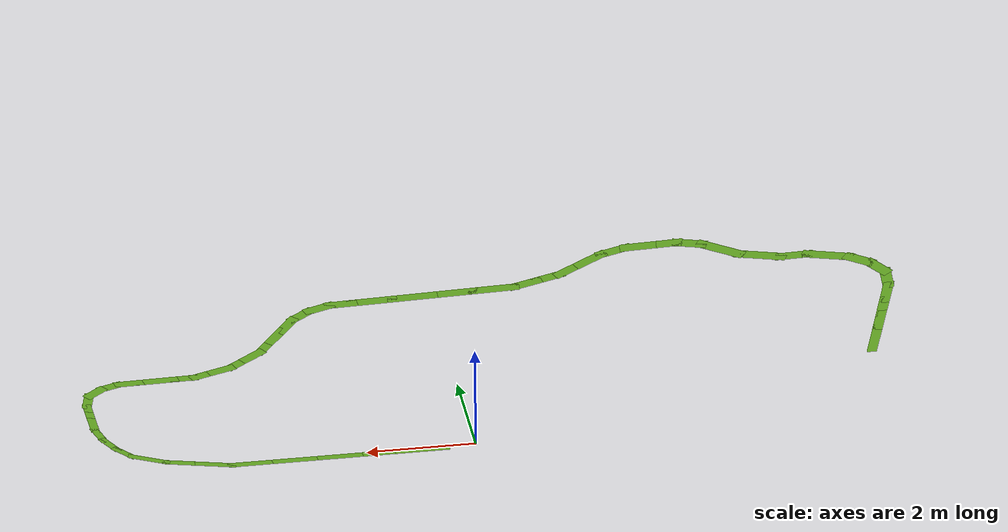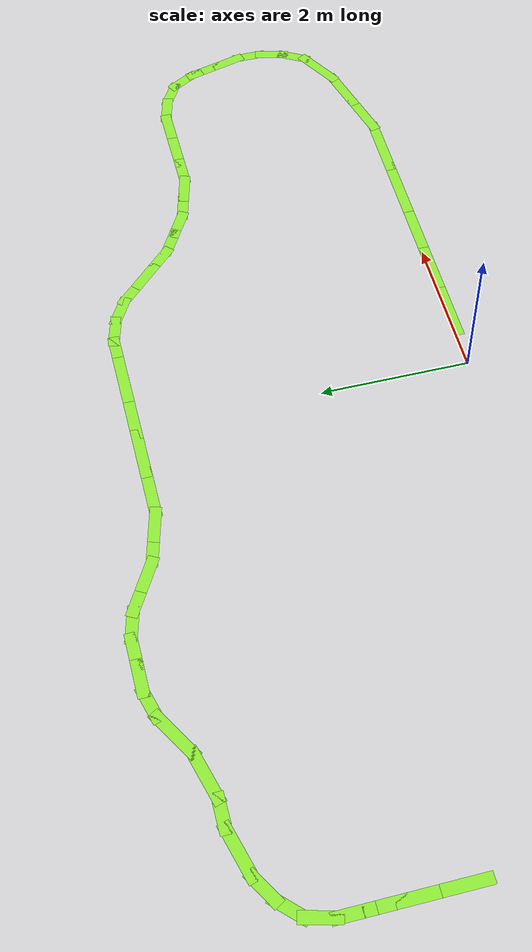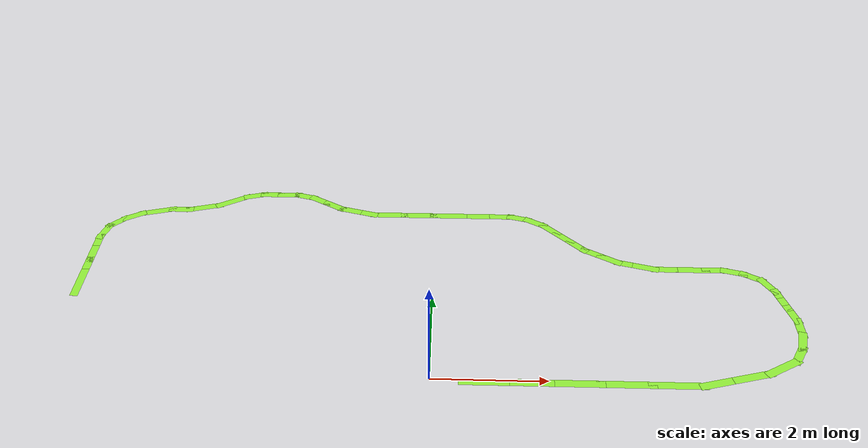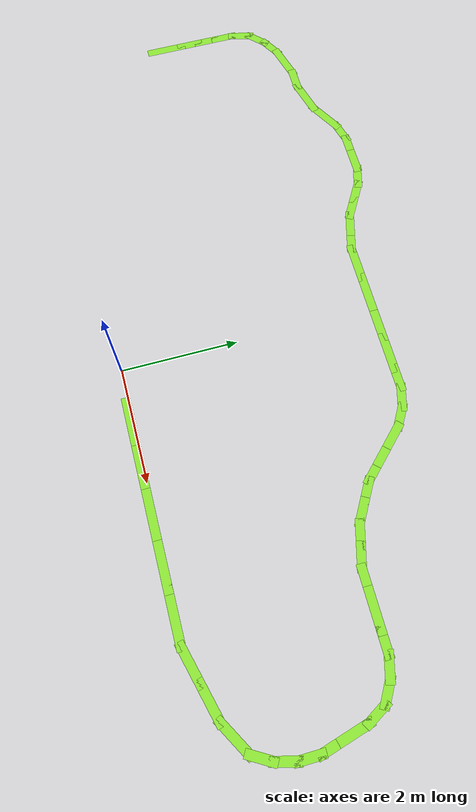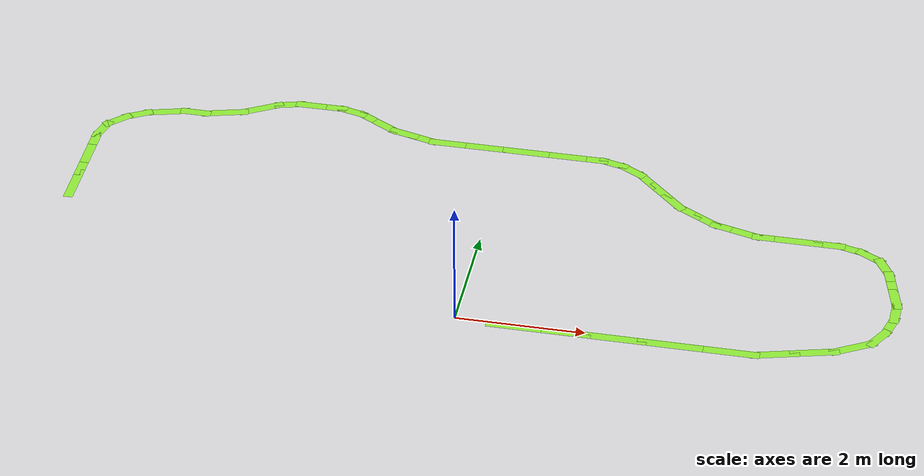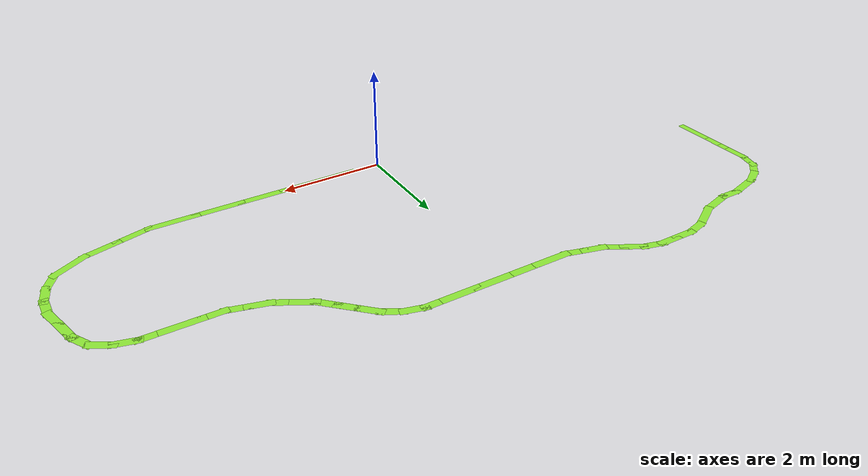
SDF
<?xml version='1.0'?>
<sdf version='1.6'>
  <model name='path_museum'>
    <pose frame=''>-0.03127 2.51163 0 0 -0 0</pose>
    <link name='Wall_19'>
      <collision name='Wall_19_Collision'>
        <geometry>
          <box>
            <size>1 0.15 0.0</size>
          </box>
        </geometry>
        <pose frame=''>0 0 0 0 -0 0</pose>
      </collision>
      <visual name='Wall_19_Visual'>
        <pose frame=''>0 0 0 0 -0 0</pose>
        <geometry>
          <box>
            <size>1 0.15 0.0</size>
          </box>
        </geometry>
        <material>
          <script>
            <uri>file://media/materials/scripts/gazebo.material</uri>
            <name>Gazebo/Grey</name>
          </script>
          <ambient>0.541176 0.886275 0.203922 1</ambient>
        </material>
        <meta>
          <layer>0</layer>
        </meta>
      </visual>
      <pose frame=''>1.01452 -2.55209 0 0 -0 0</pose>
    </link>
    <link name='Wall_21'>
      <collision name='Wall_21_Collision'>
        <geometry>
          <box>
            <size>0.75 0.15 0.0</size>
          </box>
        </geometry>
        <pose frame=''>0 0 0 0 -0 0</pose>
      </collision>
      <visual name='Wall_21_Visual'>
        <pose frame=''>0 0 0 0 -0 0</pose>
        <geometry>
          <box>
            <size>0.75 0.15 0.0</size>
          </box>
        </geometry>
        <material>
          <script>
            <uri>file://media/materials/scripts/gazebo.material</uri>
            <name>Gazebo/Grey</name>
          </script>
          <ambient>0.541176 0.886275 0.203922 1</ambient>
        </material>
        <meta>
          <layer>0</layer>
        </meta>
      </visual>
      <pose frame=''>1.73952 -2.55209 0 0 -0 0</pose>
    </link>
    <link name='Wall_22'>
      <collision name='Wall_22_Collision'>
        <geometry>
          <box>
            <size>1 0.15 0.0</size>
          </box>
        </geometry>
        <pose frame=''>0 0 0 0 -0 0</pose>
      </collision>
      <visual name='Wall_22_Visual'>
        <pose frame=''>0 0 0 0 -0 0</pose>
        <geometry>
          <box>
            <size>1 0.15 0.0</size>
          </box>
        </geometry>
        <material>
          <script>
            <uri>file://media/materials/scripts/gazebo.material</uri>
            <name>Gazebo/Grey</name>
          </script>
          <ambient>0.541176 0.886275 0.203922 1</ambient>
        </material>
        <meta>
          <layer>0</layer>
        </meta>
      </visual>
      <pose frame=''>2.46452 -2.55209 0 0 -0 0</pose>
    </link>
    <link name='Wall_23'>
      <collision name='Wall_23_Collision'>
        <geometry>
          <box>
            <size>1 0.15 0.0</size>
          </box>
        </geometry>
        <pose frame=''>0 0 0 0 -0 0</pose>
      </collision>
      <visual name='Wall_23_Visual'>
        <pose frame=''>0 0 0 0 -0 0</pose>
        <geometry>
          <box>
            <size>1 0.15 0.0</size>
          </box>
        </geometry>
        <material>
          <script>
            <uri>file://media/materials/scripts/gazebo.material</uri>
            <name>Gazebo/Grey</name>
          </script>
          <ambient>0.541176 0.886275 0.203922 1</ambient>
        </material>
        <meta>
          <layer>0</layer>
        </meta>
      </visual>
      <pose frame=''>3.31452 -2.55209 0 0 -0 0</pose>
    </link>
    <link name='Wall_26'>
      <collision name='Wall_26_Collision'>
        <geometry>
          <box>
            <size>1 0.15 0.0</size>
          </box>
        </geometry>
        <pose frame=''>0 0 0 0 -0 0</pose>
      </collision>
      <visual name='Wall_26_Visual'>
        <pose frame=''>0 0 0 0 -0 0</pose>
        <geometry>
          <box>
            <size>1 0.15 0.0</size>
          </box>
        </geometry>
        <material>
          <script>
            <uri>file://media/materials/scripts/gazebo.material</uri>
            <name>Gazebo/Grey</name>
          </script>
          <ambient>0.541176 0.886275 0.203922 1</ambient>
        </material>
        <meta>
          <layer>0</layer>
        </meta>
      </visual>
      <pose frame=''>4.16452 -2.55209 0 0 -0 0</pose>
    </link>
    <link name='Wall_27'>
      <collision name='Wall_27_Collision'>
        <geometry>
          <box>
            <size>0.75 0.15 0.0</size>
          </box>
        </geometry>
        <pose frame=''>0 0 0 0 -0 0</pose>
      </collision>
      <visual name='Wall_27_Visual'>
        <pose frame=''>0 0 0 0 -0 0</pose>
        <geometry>
          <box>
            <size>0.75 0.15 0.0</size>
          </box>
        </geometry>
        <material>
          <script>
            <uri>file://media/materials/scripts/gazebo.material</uri>
            <name>Gazebo/Grey</name>
          </script>
          <ambient>0.541176 0.886275 0.203922 1</ambient>
        </material>
        <meta>
          <layer>0</layer>
        </meta>
      </visual>
      <pose frame=''>4.8793 -2.47445 0 0 -0 0.261799</pose>
    </link>
    <link name='Wall_28'>
      <collision name='Wall_28_Collision'>
        <geometry>
          <box>
            <size>0.75 0.15 0.0</size>
          </box>
        </geometry>
        <pose frame=''>0 0 0 0 -0 0</pose>
      </collision>
      <visual name='Wall_28_Visual'>
        <pose frame=''>0 0 0 0 -0 0</pose>
        <geometry>
          <box>
            <size>0.75 0.15 0.0</size>
          </box>
        </geometry>
        <material>
          <script>
            <uri>file://media/materials/scripts/gazebo.material</uri>
            <name>Gazebo/Grey</name>
          </script>
          <ambient>0.541176 0.886275 0.203922 1</ambient>
        </material>
        <meta>
          <layer>0</layer>
        </meta>
      </visual>
      <pose frame=''>5.45886 -2.31915 0 0 -0 0.261799</pose>
    </link>
    <link name='Wall_29'>
      <collision name='Wall_29_Collision'>
        <geometry>
          <box>
            <size>0.75 0.15 0.0</size>
          </box>
        </geometry>
        <pose frame=''>0 0 0 0 -0 0</pose>
      </collision>
      <visual name='Wall_29_Visual'>
        <pose frame=''>0 0 0 0 -0 0</pose>
        <geometry>
          <box>
            <size>0.75 0.15 0.0</size>
          </box>
        </geometry>
        <material>
          <script>
            <uri>file://media/materials/scripts/gazebo.material</uri>
            <name>Gazebo/Grey</name>
          </script>
          <ambient>0.541176 0.886275 0.203922 1</ambient>
        </material>
        <meta>
          <layer>0</layer>
        </meta>
      </visual>
      <pose frame=''>6.00844 -2.09151 0 0 -0 0.523599</pose>
    </link>
    <link name='Wall_30'>
      <collision name='Wall_30_Collision'>
        <geometry>
          <box>
            <size>0.5 0.15 0.0</size>
          </box>
        </geometry>
        <pose frame=''>0 0 0 0 -0 0</pose>
      </collision>
      <visual name='Wall_30_Visual'>
        <pose frame=''>0 0 0 0 -0 0</pose>
        <geometry>
          <box>
            <size>0.5 0.15 0.0</size>
          </box>
        </geometry>
        <material>
          <script>
            <uri>file://media/materials/scripts/gazebo.material</uri>
            <name>Gazebo/Grey</name>
          </script>
          <ambient>0.541176 0.886275 0.203922 1</ambient>
        </material>
        <meta>
          <layer>0</layer>
        </meta>
      </visual>
      <pose frame=''>6.35575 -1.78995 0 0 -0 1.0472</pose>
    </link>
    <link name='Wall_31'>
      <collision name='Wall_31_Collision'>
        <geometry>
          <box>
            <size>0.5 0.15 0.0</size>
          </box>
        </geometry>
        <pose frame=''>0 0 0 0 -0 0</pose>
      </collision>
      <visual name='Wall_31_Visual'>
        <pose frame=''>0 0 0 0 -0 0</pose>
        <geometry>
          <box>
            <size>0.5 0.15 0.0</size>
          </box>
        </geometry>
        <material>
          <script>
            <uri>file://media/materials/scripts/gazebo.material</uri>
            <name>Gazebo/Grey</name>
          </script>
          <ambient>0.541176 0.886275 0.203922 1</ambient>
        </material>
        <meta>
          <layer>0</layer>
        </meta>
      </visual>
      <pose frame=''>6.48854 -1.46936 0 0 -0 1.309</pose>
    </link>
    <link name='Wall_32'>
      <collision name='Wall_32_Collision'>
        <geometry>
          <box>
            <size>0.5 0.15 0.0</size>
          </box>
        </geometry>
        <pose frame=''>0 0 0 0 -0 0</pose>
      </collision>
      <visual name='Wall_32_Visual'>
        <pose frame=''>0 0 0 0 -0 0</pose>
        <geometry>
          <box>
            <size>0.5 0.15 0.0</size>
          </box>
        </geometry>
        <material>
          <script>
            <uri>file://media/materials/scripts/gazebo.material</uri>
            <name>Gazebo/Grey</name>
          </script>
          <ambient>0.541176 0.886275 0.203922 1</ambient>
        </material>
        <meta>
          <layer>0</layer>
        </meta>
      </visual>
      <pose frame=''>6.53384 -1.12533 0 0 -0 1.5708</pose>
    </link>
    <link name='Wall_33'>
      <collision name='Wall_33_Collision'>
        <geometry>
          <box>
            <size>0.5 0.15 0.0</size>
          </box>
        </geometry>
        <pose frame=''>0 0 0 0 -0 0</pose>
      </collision>
      <visual name='Wall_33_Visual'>
        <pose frame=''>0 0 0 0 -0 0</pose>
        <geometry>
          <box>
            <size>0.5 0.15 0.0</size>
          </box>
        </geometry>
        <material>
          <script>
            <uri>file://media/materials/scripts/gazebo.material</uri>
            <name>Gazebo/Grey</name>
          </script>
          <ambient>0.541176 0.886275 0.203922 1</ambient>
        </material>
        <meta>
          <layer>0</layer>
        </meta>
      </visual>
      <pose frame=''>6.48854 -0.781289 0 0 -0 1.8326</pose>
    </link>
    <link name='Wall_34'>
      <collision name='Wall_34_Collision'>
        <geometry>
          <box>
            <size>0.5 0.15 0.0</size>
          </box>
        </geometry>
        <pose frame=''>0 0 0 0 -0 0</pose>
      </collision>
      <visual name='Wall_34_Visual'>
        <pose frame=''>0 0 0 0 -0 0</pose>
        <geometry>
          <box>
            <size>0.5 0.15 0.0</size>
          </box>
        </geometry>
        <material>
          <script>
            <uri>file://media/materials/scripts/gazebo.material</uri>
            <name>Gazebo/Grey</name>
          </script>
          <ambient>0.541176 0.886275 0.203922 1</ambient>
        </material>
        <meta>
          <layer>0</layer>
        </meta>
      </visual>
      <pose frame=''>6.39796 -0.443215 0 0 -0 1.8326</pose>
    </link>
    <link name='Wall_37'>
      <collision name='Wall_37_Collision'>
        <geometry>
          <box>
            <size>0.25 0.15 0.0</size>
          </box>
        </geometry>
        <pose frame=''>0 0 0 0 -0 0</pose>
      </collision>
      <visual name='Wall_37_Visual'>
        <pose frame=''>0 0 0 0 -0 0</pose>
        <geometry>
          <box>
            <size>0.25 0.15 0.0</size>
          </box>
        </geometry>
        <material>
          <script>
            <uri>file://media/materials/scripts/gazebo.material</uri>
            <name>Gazebo/Grey</name>
          </script>
          <ambient>0.541176 0.886275 0.203922 1</ambient>
        </material>
        <meta>
          <layer>0</layer>
        </meta>
      </visual>
      <pose frame=''>6.33972 -0.225882 0 0 -0 1.8326</pose>
    </link>
    <link name='Wall_38'>
      <collision name='Wall_38_Collision'>
        <geometry>
          <box>
            <size>0.5 0.15 0.0</size>
          </box>
        </geometry>
        <pose frame=''>0 0 0 0 -0 0</pose>
      </collision>
      <visual name='Wall_38_Visual'>
        <pose frame=''>0 0 0 0 -0 0</pose>
        <geometry>
          <box>
            <size>0.5 0.15 0.0</size>
          </box>
        </geometry>
        <material>
          <script>
            <uri>file://media/materials/scripts/gazebo.material</uri>
            <name>Gazebo/Grey</name>
          </script>
          <ambient>0.541176 0.886275 0.203922 1</ambient>
        </material>
        <meta>
          <layer>0</layer>
        </meta>
      </visual>
      <pose frame=''>6.23928 -0.026031 0 0 -0 2.0944</pose>
    </link>
    <link name='Wall_39'>
      <collision name='Wall_39_Collision'>
        <geometry>
          <box>
            <size>0.5 0.15 0.0</size>
          </box>
        </geometry>
        <pose frame=''>0 0 0 0 -0 0</pose>
      </collision>
      <visual name='Wall_39_Visual'>
        <pose frame=''>0 0 0 0 -0 0</pose>
        <geometry>
          <box>
            <size>0.5 0.15 0.0</size>
          </box>
        </geometry>
        <material>
          <script>
            <uri>file://media/materials/scripts/gazebo.material</uri>
            <name>Gazebo/Grey</name>
          </script>
          <ambient>0.541176 0.886275 0.203922 1</ambient>
        </material>
        <meta>
          <layer>0</layer>
        </meta>
      </visual>
      <pose frame=''>6.00023 0.213023 0 0 -0 2.61799</pose>
    </link>
    <link name='Wall_40'>
      <collision name='Wall_40_Collision'>
        <geometry>
          <box>
            <size>0.5 0.15 0.0</size>
          </box>
        </geometry>
        <pose frame=''>0 0 0 0 -0 0</pose>
      </collision>
      <visual name='Wall_40_Visual'>
        <pose frame=''>0 0 0 0 -0 0</pose>
        <geometry>
          <box>
            <size>0.5 0.15 0.0</size>
          </box>
        </geometry>
        <material>
          <script>
            <uri>file://media/materials/scripts/gazebo.material</uri>
            <name>Gazebo/Grey</name>
          </script>
          <ambient>0.541176 0.886275 0.203922 1</ambient>
        </material>
        <meta>
          <layer>0</layer>
        </meta>
      </visual>
      <pose frame=''>5.67964 0.345817 0 0 -0 2.87979</pose>
    </link>
    <link name='Wall_41'>
      <collision name='Wall_41_Collision'>
        <geometry>
          <box>
            <size>0.5 0.15 0.0</size>
          </box>
        </geometry>
        <pose frame=''>0 0 0 0 -0 0</pose>
      </collision>
      <visual name='Wall_41_Visual'>
        <pose frame=''>0 0 0 0 -0 0</pose>
        <geometry>
          <box>
            <size>0.5 0.15 0.0</size>
          </box>
        </geometry>
        <material>
          <script>
            <uri>file://media/materials/scripts/gazebo.material</uri>
            <name>Gazebo/Grey</name>
          </script>
          <ambient>0.541176 0.886275 0.203922 1</ambient>
        </material>
        <meta>
          <layer>0</layer>
        </meta>
      </visual>
      <pose frame=''>5.3356 0.39111 0 0 -0 3.14159</pose>
    </link>
    <link name='Wall_42'>
      <collision name='Wall_42_Collision'>
        <geometry>
          <box>
            <size>0.75 0.15 0.0</size>
          </box>
        </geometry>
        <pose frame=''>0 0 0 0 -0 0</pose>
      </collision>
      <visual name='Wall_42_Visual'>
        <pose frame=''>0 0 0 0 -0 0</pose>
        <geometry>
          <box>
            <size>0.75 0.15 0.0</size>
          </box>
        </geometry>
        <material>
          <script>
            <uri>file://media/materials/scripts/gazebo.material</uri>
            <name>Gazebo/Grey</name>
          </script>
          <ambient>0.541176 0.886275 0.203922 1</ambient>
        </material>
        <meta>
          <layer>0</layer>
        </meta>
      </visual>
      <pose frame=''>4.8606 0.39111 0 0 -0 3.14159</pose>
    </link>
    <link name='Wall_43'>
      <collision name='Wall_43_Collision'>
        <geometry>
          <box>
            <size>0.5 0.15 0.0</size>
          </box>
        </geometry>
        <pose frame=''>0 0 0 0 -0 0</pose>
      </collision>
      <visual name='Wall_43_Visual'>
        <pose frame=''>0 0 0 0 -0 0</pose>
        <geometry>
          <box>
            <size>0.5 0.15 0.0</size>
          </box>
        </geometry>
        <material>
          <script>
            <uri>file://media/materials/scripts/gazebo.material</uri>
            <name>Gazebo/Grey</name>
          </script>
          <ambient>0.541176 0.886275 0.203922 1</ambient>
        </material>
        <meta>
          <layer>0</layer>
        </meta>
      </visual>
      <pose frame=''>4.3856 0.39111 0 0 -0 3.14159</pose>
    </link>
    <link name='Wall_49'>
      <collision name='Wall_49_Collision'>
        <geometry>
          <box>
            <size>0.5 0.15 0.0</size>
          </box>
        </geometry>
        <pose frame=''>0 0 0 0 -0 0</pose>
      </collision>
      <visual name='Wall_49_Visual'>
        <pose frame=''>0 0 0 0 -0 0</pose>
        <geometry>
          <box>
            <size>0.5 0.15 0.0</size>
          </box>
        </geometry>
        <material>
          <script>
            <uri>file://media/materials/scripts/gazebo.material</uri>
            <name>Gazebo/Grey</name>
          </script>
          <ambient>0.541176 0.886275 0.203922 1</ambient>
        </material>
        <meta>
          <layer>0</layer>
        </meta>
      </visual>
      <pose frame=''>4.04156 0.436403 0 0 -0 2.87979</pose>
    </link>
    <link name='Wall_50'>
      <collision name='Wall_50_Collision'>
        <geometry>
          <box>
            <size>0.5 0.15 0.0</size>
          </box>
        </geometry>
        <pose frame=''>0 0 0 0 -0 0</pose>
      </collision>
      <visual name='Wall_50_Visual'>
        <pose frame=''>0 0 0 0 -0 0</pose>
        <geometry>
          <box>
            <size>0.5 0.15 0.0</size>
          </box>
        </geometry>
        <material>
          <script>
            <uri>file://media/materials/scripts/gazebo.material</uri>
            <name>Gazebo/Grey</name>
          </script>
          <ambient>0.541176 0.886275 0.203922 1</ambient>
        </material>
        <meta>
          <layer>0</layer>
        </meta>
      </visual>
      <pose frame=''>3.70349 0.52699 0 0 -0 2.87979</pose>
    </link>
    <link name='Wall_51'>
      <collision name='Wall_51_Collision'>
        <geometry>
          <box>
            <size>0.5 0.15 0.0</size>
          </box>
        </geometry>
        <pose frame=''>0 0 0 0 -0 0</pose>
      </collision>
      <visual name='Wall_51_Visual'>
        <pose frame=''>0 0 0 0 -0 0</pose>
        <geometry>
          <box>
            <size>0.5 0.15 0.0</size>
          </box>
        </geometry>
        <material>
          <script>
            <uri>file://media/materials/scripts/gazebo.material</uri>
            <name>Gazebo/Grey</name>
          </script>
          <ambient>0.541176 0.886275 0.203922 1</ambient>
        </material>
        <meta>
          <layer>0</layer>
        </meta>
      </visual>
      <pose frame=''>3.38289 0.659783 0 0 -0 2.61799</pose>
    </link>
    <link name='Wall_52'>
      <collision name='Wall_52_Collision'>
        <geometry>
          <box>
            <size>0.5 0.15 0.0</size>
          </box>
        </geometry>
        <pose frame=''>0 0 0 0 -0 0</pose>
      </collision>
      <visual name='Wall_52_Visual'>
        <pose frame=''>0 0 0 0 -0 0</pose>
        <geometry>
          <box>
            <size>0.5 0.15 0.0</size>
          </box>
        </geometry>
        <material>
          <script>
            <uri>file://media/materials/scripts/gazebo.material</uri>
            <name>Gazebo/Grey</name>
          </script>
          <ambient>0.541176 0.886275 0.203922 1</ambient>
        </material>
        <meta>
          <layer>0</layer>
        </meta>
      </visual>
      <pose frame=''>3.07979 0.834783 0 0 -0 2.61799</pose>
    </link>
    <link name='Wall_59'>
      <collision name='Wall_59_Collision'>
        <geometry>
          <box>
            <size>0.5 0.15 0.0</size>
          </box>
        </geometry>
        <pose frame=''>0 0 0 0 -0 0</pose>
      </collision>
      <visual name='Wall_59_Visual'>
        <pose frame=''>0 0 0 0 -0 0</pose>
        <geometry>
          <box>
            <size>0.5 0.15 0.0</size>
          </box>
        </geometry>
        <material>
          <script>
            <uri>file://media/materials/scripts/gazebo.material</uri>
            <name>Gazebo/Grey</name>
          </script>
          <ambient>0.541176 0.886275 0.203922 1</ambient>
        </material>
        <meta>
          <layer>0</layer>
        </meta>
      </visual>
      <pose frame=''>2.80449 1.04603 0 0 -0 2.35619</pose>
    </link>
    <link name='Wall_60'>
      <collision name='Wall_60_Collision'>
        <geometry>
          <box>
            <size>0.5 0.15 0.0</size>
          </box>
        </geometry>
        <pose frame=''>0 0 0 0 -0 0</pose>
      </collision>
      <visual name='Wall_60_Visual'>
        <pose frame=''>0 0 0 0 -0 0</pose>
        <geometry>
          <box>
            <size>0.5 0.15 0.0</size>
          </box>
        </geometry>
        <material>
          <script>
            <uri>file://media/materials/scripts/gazebo.material</uri>
            <name>Gazebo/Grey</name>
          </script>
          <ambient>0.541176 0.886275 0.203922 1</ambient>
        </material>
        <meta>
          <layer>0</layer>
        </meta>
      </visual>
      <pose frame=''>2.557 1.29351 0 0 -0 2.35619</pose>
    </link>
    <link name='Wall_61'>
      <collision name='Wall_61_Collision'>
        <geometry>
          <box>
            <size>0.5 0.15 0.0</size>
          </box>
        </geometry>
        <pose frame=''>0 0 0 0 -0 0</pose>
      </collision>
      <visual name='Wall_61_Visual'>
        <pose frame=''>0 0 0 0 -0 0</pose>
        <geometry>
          <box>
            <size>0.5 0.15 0.0</size>
          </box>
        </geometry>
        <material>
          <script>
            <uri>file://media/materials/scripts/gazebo.material</uri>
            <name>Gazebo/Grey</name>
          </script>
          <ambient>0.541176 0.886275 0.203922 1</ambient>
        </material>
        <meta>
          <layer>0</layer>
        </meta>
      </visual>
      <pose frame=''>2.30951 1.541 0 0 -0 2.35619</pose>
    </link>
    <link name='Wall_62'>
      <collision name='Wall_62_Collision'>
        <geometry>
          <box>
            <size>0.5 0.15 0.0</size>
          </box>
        </geometry>
        <pose frame=''>0 0 0 0 -0 0</pose>
      </collision>
      <visual name='Wall_62_Visual'>
        <pose frame=''>0 0 0 0 -0 0</pose>
        <geometry>
          <box>
            <size>0.5 0.15 0.0</size>
          </box>
        </geometry>
        <material>
          <script>
            <uri>file://media/materials/scripts/gazebo.material</uri>
            <name>Gazebo/Grey</name>
          </script>
          <ambient>0.541176 0.886275 0.203922 1</ambient>
        </material>
        <meta>
          <layer>0</layer>
        </meta>
      </visual>
      <pose frame=''>2.03422 1.75225 0 0 -0 2.61799</pose>
    </link>
    <link name='Wall_63'>
      <collision name='Wall_63_Collision'>
        <geometry>
          <box>
            <size>0.5 0.15 0.0</size>
          </box>
        </geometry>
        <pose frame=''>0 0 0 0 -0 0</pose>
      </collision>
      <visual name='Wall_63_Visual'>
        <pose frame=''>0 0 0 0 -0 0</pose>
        <geometry>
          <box>
            <size>0.5 0.15 0.0</size>
          </box>
        </geometry>
        <material>
          <script>
            <uri>file://media/materials/scripts/gazebo.material</uri>
            <name>Gazebo/Grey</name>
          </script>
          <ambient>0.541176 0.886275 0.203922 1</ambient>
        </material>
        <meta>
          <layer>0</layer>
        </meta>
      </visual>
      <pose frame=''>1.71362 1.88504 0 0 -0 2.87979</pose>
    </link>
    <link name='Wall_64'>
      <collision name='Wall_64_Collision'>
        <geometry>
          <box>
            <size>0.5 0.15 0.0</size>
          </box>
        </geometry>
        <pose frame=''>0 0 0 0 -0 0</pose>
      </collision>
      <visual name='Wall_64_Visual'>
        <pose frame=''>0 0 0 0 -0 0</pose>
        <geometry>
          <box>
            <size>0.5 0.15 0.0</size>
          </box>
        </geometry>
        <material>
          <script>
            <uri>file://media/materials/scripts/gazebo.material</uri>
            <name>Gazebo/Grey</name>
          </script>
          <ambient>0.541176 0.886275 0.203922 1</ambient>
        </material>
        <meta>
          <layer>0</layer>
        </meta>
      </visual>
      <pose frame=''>1.36959 1.93033 0 0 -0 3.14159</pose>
    </link>
    <link name='Wall_65'>
      <collision name='Wall_65_Collision'>
        <geometry>
          <box>
            <size>0.75 0.15 0.0</size>
          </box>
        </geometry>
        <pose frame=''>0 0 0 0 -0 0</pose>
      </collision>
      <visual name='Wall_65_Visual'>
        <pose frame=''>0 0 0 0 -0 0</pose>
        <geometry>
          <box>
            <size>0.75 0.15 0.0</size>
          </box>
        </geometry>
        <material>
          <script>
            <uri>file://media/materials/scripts/gazebo.material</uri>
            <name>Gazebo/Grey</name>
          </script>
          <ambient>0.541176 0.886275 0.203922 1</ambient>
        </material>
        <meta>
          <layer>0</layer>
        </meta>
      </visual>
      <pose frame=''>0.894587 1.93033 0 0 -0 3.14159</pose>
    </link>
    <link name='Wall_66'>
      <collision name='Wall_66_Collision'>
        <geometry>
          <box>
            <size>0.75 0.15 0.0</size>
          </box>
        </geometry>
        <pose frame=''>0 0 0 0 -0 0</pose>
      </collision>
      <visual name='Wall_66_Visual'>
        <pose frame=''>0 0 0 0 -0 0</pose>
        <geometry>
          <box>
            <size>0.75 0.15 0.0</size>
          </box>
        </geometry>
        <material>
          <script>
            <uri>file://media/materials/scripts/gazebo.material</uri>
            <name>Gazebo/Grey</name>
          </script>
          <ambient>0.541176 0.886275 0.203922 1</ambient>
        </material>
        <meta>
          <layer>0</layer>
        </meta>
      </visual>
      <pose frame=''>0.294587 1.93033 0 0 -0 3.14159</pose>
    </link>
    <link name='Wall_67'>
      <collision name='Wall_67_Collision'>
        <geometry>
          <box>
            <size>0.75 0.15 0.0</size>
          </box>
        </geometry>
        <pose frame=''>0 0 0 0 -0 0</pose>
      </collision>
      <visual name='Wall_67_Visual'>
        <pose frame=''>0 0 0 0 -0 0</pose>
        <geometry>
          <box>
            <size>0.75 0.15 0.0</size>
          </box>
        </geometry>
        <material>
          <script>
            <uri>file://media/materials/scripts/gazebo.material</uri>
            <name>Gazebo/Grey</name>
          </script>
          <ambient>0.541176 0.886275 0.203922 1</ambient>
        </material>
        <meta>
          <layer>0</layer>
        </meta>
      </visual>
      <pose frame=''>-0.305413 1.93033 0 0 -0 3.14159</pose>
    </link>
    <link name='Wall_68'>
      <collision name='Wall_68_Collision'>
        <geometry>
          <box>
            <size>0.75 0.15 0.0</size>
          </box>
        </geometry>
        <pose frame=''>0 0 0 0 -0 0</pose>
      </collision>
      <visual name='Wall_68_Visual'>
        <pose frame=''>0 0 0 0 -0 0</pose>
        <geometry>
          <box>
            <size>0.75 0.15 0.0</size>
          </box>
        </geometry>
        <material>
          <script>
            <uri>file://media/materials/scripts/gazebo.material</uri>
            <name>Gazebo/Grey</name>
          </script>
          <ambient>0.541176 0.886275 0.203922 1</ambient>
        </material>
        <meta>
          <layer>0</layer>
        </meta>
      </visual>
      <pose frame=''>-0.905413 1.93033 0 0 -0 3.14159</pose>
    </link>
    <link name='Wall_69'>
      <collision name='Wall_69_Collision'>
        <geometry>
          <box>
            <size>0.5 0.15 0.0</size>
          </box>
        </geometry>
        <pose frame=''>0 0 0 0 -0 0</pose>
      </collision>
      <visual name='Wall_69_Visual'>
        <pose frame=''>0 0 0 0 -0 0</pose>
        <geometry>
          <box>
            <size>0.5 0.15 0.0</size>
          </box>
        </geometry>
        <material>
          <script>
            <uri>file://media/materials/scripts/gazebo.material</uri>
            <name>Gazebo/Grey</name>
          </script>
          <ambient>0.541176 0.886275 0.203922 1</ambient>
        </material>
        <meta>
          <layer>0</layer>
        </meta>
      </visual>
      <pose frame=''>-1.37445 1.97562 0 0 -0 2.87979</pose>
    </link>
    <link name='Wall_70'>
      <collision name='Wall_70_Collision'>
        <geometry>
          <box>
            <size>0.5 0.15 0.0</size>
          </box>
        </geometry>
        <pose frame=''>0 0 0 0 -0 0</pose>
      </collision>
      <visual name='Wall_70_Visual'>
        <pose frame=''>0 0 0 0 -0 0</pose>
        <geometry>
          <box>
            <size>0.5 0.15 0.0</size>
          </box>
        </geometry>
        <material>
          <script>
            <uri>file://media/materials/scripts/gazebo.material</uri>
            <name>Gazebo/Grey</name>
          </script>
          <ambient>0.541176 0.886275 0.203922 1</ambient>
        </material>
        <meta>
          <layer>0</layer>
        </meta>
      </visual>
      <pose frame=''>-1.71252 2.06621 0 0 -0 2.87979</pose>
    </link>
    <link name='Wall_71'>
      <collision name='Wall_71_Collision'>
        <geometry>
          <box>
            <size>0.5 0.15 0.0</size>
          </box>
        </geometry>
        <pose frame=''>0 0 0 0 -0 0</pose>
      </collision>
      <visual name='Wall_71_Visual'>
        <pose frame=''>0 0 0 0 -0 0</pose>
        <geometry>
          <box>
            <size>0.5 0.15 0.0</size>
          </box>
        </geometry>
        <material>
          <script>
            <uri>file://media/materials/scripts/gazebo.material</uri>
            <name>Gazebo/Grey</name>
          </script>
          <ambient>0.541176 0.886275 0.203922 1</ambient>
        </material>
        <meta>
          <layer>0</layer>
        </meta>
      </visual>
      <pose frame=''>-2.03312 2.19901 0 0 -0 2.61799</pose>
    </link>
    <link name='Wall_72'>
      <collision name='Wall_72_Collision'>
        <geometry>
          <box>
            <size>0.5 0.15 0.0</size>
          </box>
        </geometry>
        <pose frame=''>0 0 0 0 -0 0</pose>
      </collision>
      <visual name='Wall_72_Visual'>
        <pose frame=''>0 0 0 0 -0 0</pose>
        <geometry>
          <box>
            <size>0.5 0.15 0.0</size>
          </box>
        </geometry>
        <material>
          <script>
            <uri>file://media/materials/scripts/gazebo.material</uri>
            <name>Gazebo/Grey</name>
          </script>
          <ambient>0.541176 0.886275 0.203922 1</ambient>
        </material>
        <meta>
          <layer>0</layer>
        </meta>
      </visual>
      <pose frame=''>-2.33623 2.374 0 0 -0 2.61799</pose>
    </link>
    <link name='Wall_73'>
      <collision name='Wall_73_Collision'>
        <geometry>
          <box>
            <size>0.5 0.15 0.0</size>
          </box>
        </geometry>
        <pose frame=''>0 0 0 0 -0 0</pose>
      </collision>
      <visual name='Wall_73_Visual'>
        <pose frame=''>0 0 0 0 -0 0</pose>
        <geometry>
          <box>
            <size>0.5 0.15 0.0</size>
          </box>
        </geometry>
        <material>
          <script>
            <uri>file://media/materials/scripts/gazebo.material</uri>
            <name>Gazebo/Grey</name>
          </script>
          <ambient>0.541176 0.886275 0.203922 1</ambient>
        </material>
        <meta>
          <layer>0</layer>
        </meta>
      </visual>
      <pose frame=''>-2.65682 2.5068 0 0 -0 2.87979</pose>
    </link>
    <link name='Wall_74'>
      <collision name='Wall_74_Collision'>
        <geometry>
          <box>
            <size>0.5 0.15 0.0</size>
          </box>
        </geometry>
        <pose frame=''>0 0 0 0 -0 0</pose>
      </collision>
      <visual name='Wall_74_Visual'>
        <pose frame=''>0 0 0 0 -0 0</pose>
        <geometry>
          <box>
            <size>0.5 0.15 0.0</size>
          </box>
        </geometry>
        <material>
          <script>
            <uri>file://media/materials/scripts/gazebo.material</uri>
            <name>Gazebo/Grey</name>
          </script>
          <ambient>0.541176 0.886275 0.203922 1</ambient>
        </material>
        <meta>
          <layer>0</layer>
        </meta>
      </visual>
      <pose frame=''>-3.00085 2.55209 0 0 -0 3.14159</pose>
    </link>
    <link name='Wall_75'>
      <collision name='Wall_75_Collision'>
        <geometry>
          <box>
            <size>0.5 0.15 0.0</size>
          </box>
        </geometry>
        <pose frame=''>0 0 0 0 -0 0</pose>
      </collision>
      <visual name='Wall_75_Visual'>
        <pose frame=''>0 0 0 0 -0 0</pose>
        <geometry>
          <box>
            <size>0.5 0.15 0.0</size>
          </box>
        </geometry>
        <material>
          <script>
            <uri>file://media/materials/scripts/gazebo.material</uri>
            <name>Gazebo/Grey</name>
          </script>
          <ambient>0.541176 0.886275 0.203922 1</ambient>
        </material>
        <meta>
          <layer>0</layer>
        </meta>
      </visual>
      <pose frame=''>-3.35085 2.55209 0 0 -0 3.14159</pose>
    </link>
    <link name='Wall_76'>
      <collision name='Wall_76_Collision'>
        <geometry>
          <box>
            <size>0.5 0.15 0.0</size>
          </box>
        </geometry>
        <pose frame=''>0 0 0 0 -0 0</pose>
      </collision>
      <visual name='Wall_76_Visual'>
        <pose frame=''>0 0 0 0 -0 0</pose>
        <geometry>
          <box>
            <size>0.5 0.15 0.0</size>
          </box>
        </geometry>
        <material>
          <script>
            <uri>file://media/materials/scripts/gazebo.material</uri>
            <name>Gazebo/Grey</name>
          </script>
          <ambient>0.541176 0.886275 0.203922 1</ambient>
        </material>
        <meta>
          <layer>0</layer>
        </meta>
      </visual>
      <pose frame=''>-3.69489 2.5068 0 0 -0 -2.87979</pose>
    </link>
    <link name='Wall_77'>
      <collision name='Wall_77_Collision'>
        <geometry>
          <box>
            <size>0.75 0.15 0.0</size>
          </box>
        </geometry>
        <pose frame=''>0 0 0 0 -0 0</pose>
      </collision>
      <visual name='Wall_77_Visual'>
        <pose frame=''>0 0 0 0 -0 0</pose>
        <geometry>
          <box>
            <size>0.75 0.15 0.0</size>
          </box>
        </geometry>
        <material>
          <script>
            <uri>file://media/materials/scripts/gazebo.material</uri>
            <name>Gazebo/Grey</name>
          </script>
          <ambient>0.541176 0.886275 0.203922 1</ambient>
        </material>
        <meta>
          <layer>0</layer>
        </meta>
      </visual>
      <pose frame=''>-4.12373 2.3115 0 0 -0 -2.61799</pose>
    </link>
    <link name='Wall_78'>
      <collision name='Wall_78_Collision'>
        <geometry>
          <box>
            <size>0.75 0.15 0.0</size>
          </box>
        </geometry>
        <pose frame=''>0 0 0 0 -0 0</pose>
      </collision>
      <visual name='Wall_78_Visual'>
        <pose frame=''>0 0 0 0 -0 0</pose>
        <geometry>
          <box>
            <size>0.75 0.15 0.0</size>
          </box>
        </geometry>
        <material>
          <script>
            <uri>file://media/materials/scripts/gazebo.material</uri>
            <name>Gazebo/Grey</name>
          </script>
          <ambient>0.541176 0.886275 0.203922 1</ambient>
        </material>
        <meta>
          <layer>0</layer>
        </meta>
      </visual>
      <pose frame=''>-4.67332 2.08386 0 0 -0 -2.87979</pose>
    </link>
    <link name='Wall_79'>
      <collision name='Wall_79_Collision'>
        <geometry>
          <box>
            <size>0.5 0.15 0.0</size>
          </box>
        </geometry>
        <pose frame=''>0 0 0 0 -0 0</pose>
      </collision>
      <visual name='Wall_79_Visual'>
        <pose frame=''>0 0 0 0 -0 0</pose>
        <geometry>
          <box>
            <size>0.5 0.15 0.0</size>
          </box>
        </geometry>
        <material>
          <script>
            <uri>file://media/materials/scripts/gazebo.material</uri>
            <name>Gazebo/Grey</name>
          </script>
          <ambient>0.541176 0.886275 0.203922 1</ambient>
        </material>
        <meta>
          <layer>0</layer>
        </meta>
      </visual>
      <pose frame=''>-5.1381 2.00621 0 0 -0 3.14159</pose>
    </link>
    <link name='Wall_80'>
      <collision name='Wall_80_Collision'>
        <geometry>
          <box>
            <size>0.75 0.15 0.0</size>
          </box>
        </geometry>
        <pose frame=''>0 0 0 0 -0 0</pose>
      </collision>
      <visual name='Wall_80_Visual'>
        <pose frame=''>0 0 0 0 -0 0</pose>
        <geometry>
          <box>
            <size>0.75 0.15 0.0</size>
          </box>
        </geometry>
        <material>
          <script>
            <uri>file://media/materials/scripts/gazebo.material</uri>
            <name>Gazebo/Grey</name>
          </script>
          <ambient>0.541176 0.886275 0.203922 1</ambient>
        </material>
        <meta>
          <layer>0</layer>
        </meta>
      </visual>
      <pose frame=''>-5.60288 1.92857 0 0 -0 -2.87979</pose>
    </link>
    <link name='Wall_81'>
      <collision name='Wall_81_Collision'>
        <geometry>
          <box>
            <size>0.5 0.15 0.0</size>
          </box>
        </geometry>
        <pose frame=''>0 0 0 0 -0 0</pose>
      </collision>
      <visual name='Wall_81_Visual'>
        <pose frame=''>0 0 0 0 -0 0</pose>
        <geometry>
          <box>
            <size>0.5 0.15 0.0</size>
          </box>
        </geometry>
        <material>
          <script>
            <uri>file://media/materials/scripts/gazebo.material</uri>
            <name>Gazebo/Grey</name>
          </script>
          <ambient>0.541176 0.886275 0.203922 1</ambient>
        </material>
        <meta>
          <layer>0</layer>
        </meta>
      </visual>
      <pose frame=''>-6.04421 1.76342 0 0 -0 -2.61799</pose>
    </link>
    <link name='Wall_82'>
      <collision name='Wall_82_Collision'>
        <geometry>
          <box>
            <size>0.5 0.15 0.0</size>
          </box>
        </geometry>
        <pose frame=''>0 0 0 0 -0 0</pose>
      </collision>
      <visual name='Wall_82_Visual'>
        <pose frame=''>0 0 0 0 -0 0</pose>
        <geometry>
          <box>
            <size>0.5 0.15 0.0</size>
          </box>
        </geometry>
        <material>
          <script>
            <uri>file://media/materials/scripts/gazebo.material</uri>
            <name>Gazebo/Grey</name>
          </script>
          <ambient>0.541176 0.886275 0.203922 1</ambient>
        </material>
        <meta>
          <layer>0</layer>
        </meta>
      </visual>
      <pose frame=''>-6.31951 1.55218 0 0 -0 -2.35619</pose>
    </link>
    <link name='Wall_83'>
      <collision name='Wall_83_Collision'>
        <geometry>
          <box>
            <size>0.5 0.15 0.0</size>
          </box>
        </geometry>
        <pose frame=''>0 0 0 0 -0 0</pose>
      </collision>
      <visual name='Wall_83_Visual'>
        <pose frame=''>0 0 0 0 -0 0</pose>
        <geometry>
          <box>
            <size>0.5 0.15 0.0</size>
          </box>
        </geometry>
        <material>
          <script>
            <uri>file://media/materials/scripts/gazebo.material</uri>
            <name>Gazebo/Grey</name>
          </script>
          <ambient>0.541176 0.886275 0.203922 1</ambient>
        </material>
        <meta>
          <layer>0</layer>
        </meta>
      </visual>
      <pose frame=''>-6.48854 1.2594 0 0 -0 -1.8326</pose>
    </link>
    <link name='Wall_84'>
      <collision name='Wall_84_Collision'>
        <geometry>
          <box>
            <size>0.5 0.15 0.0</size>
          </box>
        </geometry>
        <pose frame=''>0 0 0 0 -0 0</pose>
      </collision>
      <visual name='Wall_84_Visual'>
        <pose frame=''>0 0 0 0 -0 0</pose>
        <geometry>
          <box>
            <size>0.5 0.15 0.0</size>
          </box>
        </geometry>
        <material>
          <script>
            <uri>file://media/materials/scripts/gazebo.material</uri>
            <name>Gazebo/Grey</name>
          </script>
          <ambient>0.541176 0.886275 0.203922 1</ambient>
        </material>
        <meta>
          <layer>0</layer>
        </meta>
      </visual>
      <pose frame=''>-6.53384 0.915361 0 0 -0 -1.5708</pose>
    </link>
    <link name='Wall_85'>
      <collision name='Wall_85_Collision'>
        <geometry>
          <box>
            <size>0.5 0.15 0.0</size>
          </box>
        </geometry>
        <pose frame=''>0 0 0 0 -0 0</pose>
      </collision>
      <visual name='Wall_85_Visual'>
        <pose frame=''>0 0 0 0 -0 0</pose>
        <geometry>
          <box>
            <size>0.5 0.15 0.0</size>
          </box>
        </geometry>
        <material>
          <script>
            <uri>file://media/materials/scripts/gazebo.material</uri>
            <name>Gazebo/Grey</name>
          </script>
          <ambient>0.541176 0.886275 0.203922 1</ambient>
        </material>
        <meta>
          <layer>0</layer>
        </meta>
      </visual>
      <pose frame=''>-6.53384 0.565361 0 0 -0 -1.5708</pose>
    </link>
    <link name='Wall_86'>
      <collision name='Wall_86_Collision'>
        <geometry>
          <box>
            <size>0.5 0.15 0.0</size>
          </box>
        </geometry>
        <pose frame=''>0 0 0 0 -0 0</pose>
      </collision>
      <visual name='Wall_86_Visual'>
        <pose frame=''>0 0 0 0 -0 0</pose>
        <geometry>
          <box>
            <size>0.5 0.15 0.0</size>
          </box>
        </geometry>
        <material>
          <script>
            <uri>file://media/materials/scripts/gazebo.material</uri>
            <name>Gazebo/Grey</name>
          </script>
          <ambient>0.541176 0.886275 0.203922 1</ambient>
        </material>
        <meta>
          <layer>0</layer>
        </meta>
      </visual>
      <pose frame=''>-6.53384 0.215361 0 0 -0 -1.5708</pose>
    </link>
    <link name='Wall_87'>
      <collision name='Wall_87_Collision'>
        <geometry>
          <box>
            <size>0.75 0.15 0.0</size>
          </box>
        </geometry>
        <pose frame=''>0 0 0 0 -0 0</pose>
      </collision>
      <visual name='Wall_87_Visual'>
        <pose frame=''>0 0 0 0 -0 0</pose>
        <geometry>
          <box>
            <size>0.75 0.15 0.0</size>
          </box>
        </geometry>
        <material>
          <script>
            <uri>file://media/materials/scripts/gazebo.material</uri>
            <name>Gazebo/Grey</name>
          </script>
          <ambient>0.541176 0.886275 0.203922 1</ambient>
        </material>
        <meta>
          <layer>0</layer>
        </meta>
      </visual>
      <pose frame=''>-6.53384 -0.259639 0 0 -0 -1.5708</pose>
    </link>
    <static>1</static>
  </model>
</sdf>
